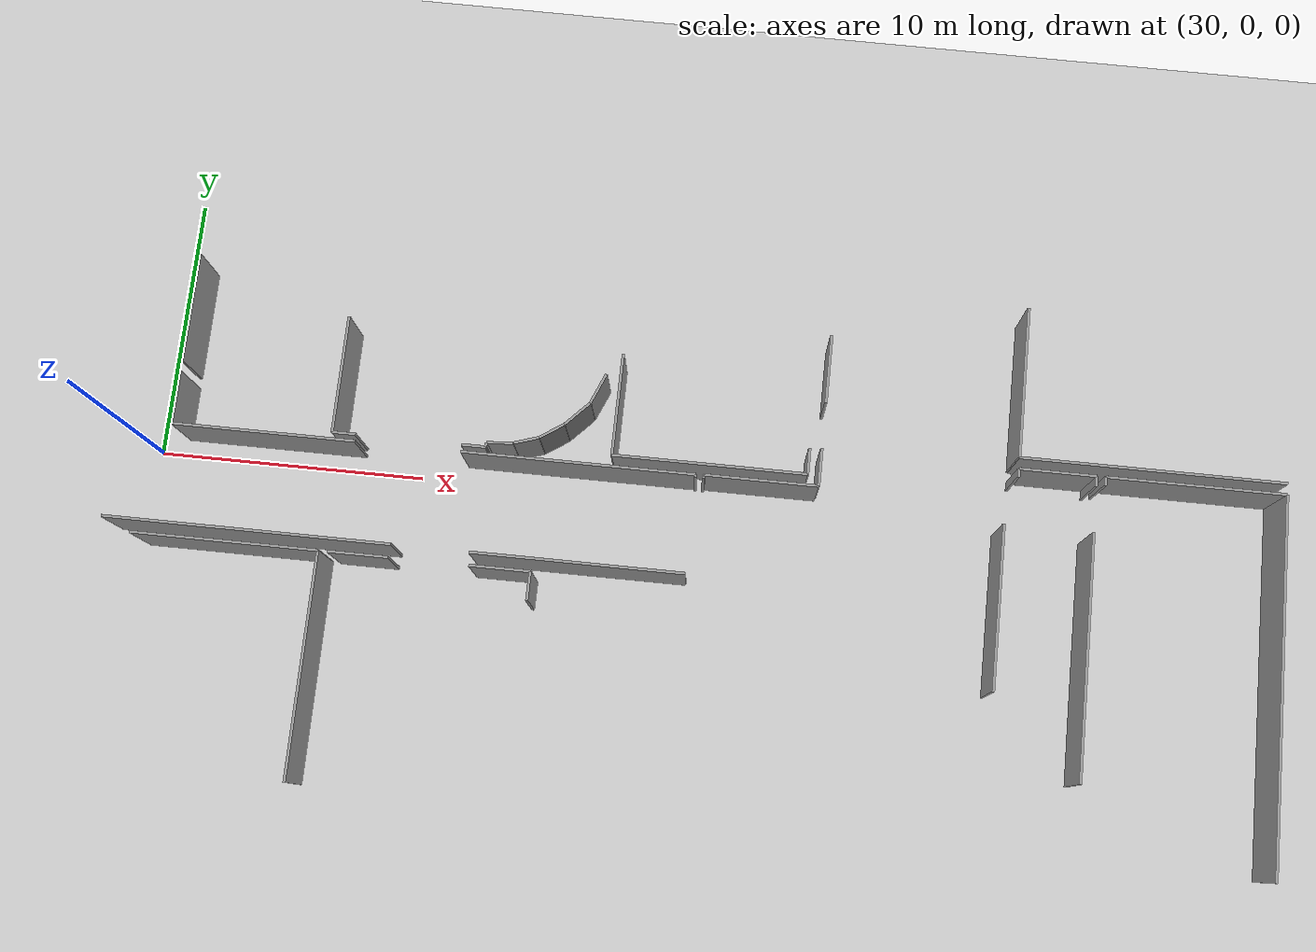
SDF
<sdf version="1.6">
 <world name="default">
  <model name="ground_plane">
   <static>1</static>
   <link name="link">
    <collision name="collision">
     <geometry><plane><normal>0 0 1</normal><size>100 100</size></plane></geometry>
     <surface><friction><ode><mu>100</mu><mu2>50</mu2></ode></friction></surface>
    </collision>
    <visual name="visual">
     <cast_shadows>0</cast_shadows>
     <geometry><plane><normal>0 0 1</normal><size>100 100</size></plane></geometry>
     <material>
      <script><uri>file://media/materials/scripts/gazebo.material</uri><name>Gazebo/Grey</name></script>
     </material>
    </visual>
   </link>
  </model>
  <model name="0510032217_A-40">
   <static>1</static>
   <link name="Wall_166">
    <collision name="Wall_166_Collision">
     <geometry><box><size>0.134250329916 0.1 2.5</size></box></geometry>
     <pose>0.0671251649579 0 1.25 0 0 0</pose>
    </collision>
    <visual name="Wall_166_Visual">
     <pose>0.0671251649579 0 1.25 0 0 0</pose>
     <geometry><box><size>0.134250329916 0.1 2.5</size></box></geometry>
     <material>
      <script><uri>file://media/materials/scripts/gazebo.material</uri><name>Gazebo/Grey</name></script>
      <ambient>1 1 1 1</ambient>
     </material>
    </visual>
    <pose>127.537115521 -52.5775555781 0 0 0 1.57079632679</pose>
   </link>
   <link name="Wall_167">
    <collision name="Wall_167_Collision">
     <geometry><box><size>4.24829966501 0.1 2.5</size></box></geometry>
     <pose>2.1241498325 0 1.25 0 0 0</pose>
    </collision>
    <visual name="Wall_167_Visual">
     <pose>2.1241498325 0 1.25 0 0 0</pose>
     <geometry><box><size>4.24829966501 0.1 2.5</size></box></geometry>
     <material>
      <script><uri>file://media/materials/scripts/gazebo.material</uri><name>Gazebo/Grey</name></script>
      <ambient>1 1 1 1</ambient>
     </material>
    </visual>
    <pose>127.537115521 -52.4433052482 0 0 0 0.0</pose>
   </link>
   <link name="Wall_168">
    <collision name="Wall_168_Collision">
     <geometry><box><size>1.42967719013 0.1 2.5</size></box></geometry>
     <pose>0.714838595066 0 1.25 0 0 0</pose>
    </collision>
    <visual name="Wall_168_Visual">
     <pose>0.714838595066 0 1.25 0 0 0</pose>
     <geometry><box><size>1.42967719013 0.1 2.5</size></box></geometry>
     <material>
      <script><uri>file://media/materials/scripts/gazebo.material</uri><name>Gazebo/Grey</name></script>
      <ambient>1 1 1 1</ambient>
     </material>
    </visual>
    <pose>131.785415186 -52.4433052482 0 0 0 1.57079632679</pose>
   </link>
   <link name="Wall_169">
    <collision name="Wall_169_Collision">
     <geometry><box><size>2.62980915643 0.1 2.5</size></box></geometry>
     <pose>1.31490457822 0 1.25 0 0 0</pose>
    </collision>
    <visual name="Wall_169_Visual">
     <pose>1.31490457822 0 1.25 0 0 0</pose>
     <geometry><box><size>2.62980915643 0.1 2.5</size></box></geometry>
     <material>
      <script><uri>file://media/materials/scripts/gazebo.material</uri><name>Gazebo/Grey</name></script>
      <ambient>1 1 1 1</ambient>
     </material>
    </visual>
    <pose>131.785415186 -49.2665972998 0 0 0 1.57079632679</pose>
   </link>
   <link name="Wall_184">
    <collision name="Wall_184_Collision">
     <geometry><box><size>6.15990762359 0.1 2.5</size></box></geometry>
     <pose>3.0799538118 0 1.25 0 0 0</pose>
    </collision>
    <visual name="Wall_184_Visual">
     <pose>3.0799538118 0 1.25 0 0 0</pose>
     <geometry><box><size>6.15990762359 0.1 2.5</size></box></geometry>
     <material>
      <script><uri>file://media/materials/scripts/gazebo.material</uri><name>Gazebo/Grey</name></script>
      <ambient>1 1 1 1</ambient>
     </material>
    </visual>
    <pose>138.655276114 -53.1820627347 0 0 0 -1.57079632679</pose>
   </link>
   <link name="Wall_198">
    <collision name="Wall_198_Collision">
     <geometry><box><size>7.24418840727 0.1 2.5</size></box></geometry>
     <pose>3.62209420363 0 1.25 0 0 0</pose>
    </collision>
    <visual name="Wall_198_Visual">
     <pose>3.62209420363 0 1.25 0 0 0</pose>
     <geometry><box><size>7.24418840727 0.1 2.5</size></box></geometry>
     <material>
      <script><uri>file://media/materials/scripts/gazebo.material</uri><name>Gazebo/Grey</name></script>
      <ambient>1 1 1 1</ambient>
     </material>
    </visual>
    <pose>131.343835651 -52.0403004771 0 0 0 3.14159265359</pose>
   </link>
   <link name="Wall_199">
    <collision name="Wall_199_Collision">
     <geometry><box><size>3.87422596691 0.1 2.5</size></box></geometry>
     <pose>1.93711298345 0 1.25 0 0 0</pose>
    </collision>
    <visual name="Wall_199_Visual">
     <pose>1.93711298345 0 1.25 0 0 0</pose>
     <geometry><box><size>3.87422596691 0.1 2.5</size></box></geometry>
     <material>
      <script><uri>file://media/materials/scripts/gazebo.material</uri><name>Gazebo/Grey</name></script>
      <ambient>1 1 1 1</ambient>
     </material>
    </visual>
    <pose>124.099647244 -52.0403004771 0 0 0 1.57079632679</pose>
   </link>
   <link name="Wall_202">
    <collision name="Wall_202_Collision">
     <geometry><box><size>0.969067377455 0.1 2.5</size></box></geometry>
     <pose>0.484533688728 0 1.25 0 0 0</pose>
    </collision>
    <visual name="Wall_202_Visual">
     <pose>0.484533688728 0 1.25 0 0 0</pose>
     <geometry><box><size>0.969067377455 0.1 2.5</size></box></geometry>
     <material>
      <script><uri>file://media/materials/scripts/gazebo.material</uri><name>Gazebo/Grey</name></script>
      <ambient>1 1 1 1</ambient>
     </material>
    </visual>
    <pose>131.341297838 -51.0712364227 0 0 0 -1.5681775034</pose>
   </link>
   <link name="Wall_232">
    <collision name="Wall_232_Collision">
     <geometry><box><size>9.87336311034 0.1 2.5</size></box></geometry>
     <pose>4.93668155517 0 1.25 0 0 0</pose>
    </collision>
    <visual name="Wall_232_Visual">
     <pose>4.93668155517 0 1.25 0 0 0</pose>
     <geometry><box><size>9.87336311034 0.1 2.5</size></box></geometry>
     <material>
      <script><uri>file://media/materials/scripts/gazebo.material</uri><name>Gazebo/Grey</name></script>
      <ambient>1 1 1 1</ambient>
     </material>
    </visual>
    <pose>148.939764998 -50.629910669 0 0 0 3.14159265359</pose>
   </link>
   <link name="Wall_233">
    <collision name="Wall_233_Collision">
     <geometry><box><size>5.78570703482 0.1 2.5</size></box></geometry>
     <pose>2.89285351741 0 1.25 0 0 0</pose>
    </collision>
    <visual name="Wall_233_Visual">
     <pose>2.89285351741 0 1.25 0 0 0</pose>
     <geometry><box><size>5.78570703482 0.1 2.5</size></box></geometry>
     <material>
      <script><uri>file://media/materials/scripts/gazebo.material</uri><name>Gazebo/Grey</name></script>
      <ambient>1 1 1 1</ambient>
     </material>
    </visual>
    <pose>139.066401888 -50.629910669 0 0 0 1.57079632679</pose>
   </link>
   <link name="Wall_241">
    <collision name="Wall_241_Collision">
     <geometry><box><size>0.32293675769 0.1 2.5</size></box></geometry>
     <pose>0.161468378845 0 1.25 0 0 0</pose>
    </collision>
    <visual name="Wall_241_Visual">
     <pose>0.161468378845 0 1.25 0 0 0</pose>
     <geometry><box><size>0.32293675769 0.1 2.5</size></box></geometry>
     <material>
      <script><uri>file://media/materials/scripts/gazebo.material</uri><name>Gazebo/Grey</name></script>
      <ambient>1 1 1 1</ambient>
     </material>
    </visual>
    <pose>139.075284235 -51.3753933611 0 0 0 1.57079632679</pose>
   </link>
   <link name="Wall_242">
    <collision name="Wall_242_Collision">
     <geometry><box><size>2.861384631 0.1 2.5</size></box></geometry>
     <pose>1.4306923155 0 1.25 0 0 0</pose>
    </collision>
    <visual name="Wall_242_Visual">
     <pose>1.4306923155 0 1.25 0 0 0</pose>
     <geometry><box><size>2.861384631 0.1 2.5</size></box></geometry>
     <material>
      <script><uri>file://media/materials/scripts/gazebo.material</uri><name>Gazebo/Grey</name></script>
      <ambient>1 1 1 1</ambient>
     </material>
    </visual>
    <pose>139.075284235 -51.0524566034 0 0 0 0.0</pose>
   </link>
   <link name="Wall_243">
    <collision name="Wall_243_Collision">
     <geometry><box><size>0.389046797279 0.1 2.5</size></box></geometry>
     <pose>0.19452339864 0 1.25 0 0 0</pose>
    </collision>
    <visual name="Wall_243_Visual">
     <pose>0.19452339864 0 1.25 0 0 0</pose>
     <geometry><box><size>0.389046797279 0.1 2.5</size></box></geometry>
     <material>
      <script><uri>file://media/materials/scripts/gazebo.material</uri><name>Gazebo/Grey</name></script>
      <ambient>1 1 1 1</ambient>
     </material>
    </visual>
    <pose>141.936668866 -51.0524566034 0 0 0 -1.57079632679</pose>
   </link>
   <link name="Wall_244">
    <collision name="Wall_244_Collision">
     <geometry><box><size>9.13257537306 0.1 2.5</size></box></geometry>
     <pose>4.56628768653 0 1.25 0 0 0</pose>
    </collision>
    <visual name="Wall_244_Visual">
     <pose>4.56628768653 0 1.25 0 0 0</pose>
     <geometry><box><size>9.13257537306 0.1 2.5</size></box></geometry>
     <material>
      <script><uri>file://media/materials/scripts/gazebo.material</uri><name>Gazebo/Grey</name></script>
      <ambient>1 1 1 1</ambient>
     </material>
    </visual>
    <pose>141.936668866 -53.1749568572 0 0 0 -1.57079632679</pose>
   </link>
   <link name="Wall_249">
    <collision name="Wall_249_Collision">
     <geometry><box><size>0.317226677495 0.1 2.5</size></box></geometry>
     <pose>0.158613338747 0 1.25 0 0 0</pose>
    </collision>
    <visual name="Wall_249_Visual">
     <pose>0.158613338747 0 1.25 0 0 0</pose>
     <geometry><box><size>0.317226677495 0.1 2.5</size></box></geometry>
     <material>
      <script><uri>file://media/materials/scripts/gazebo.material</uri><name>Gazebo/Grey</name></script>
      <ambient>1 1 1 1</ambient>
     </material>
    </visual>
    <pose>142.271660238 -51.3665110141 0 0 0 1.57079632679</pose>
   </link>
   <link name="Wall_250">
    <collision name="Wall_250_Collision">
     <geometry><box><size>6.66176022739 0.1 2.5</size></box></geometry>
     <pose>3.33088011369 0 1.25 0 0 0</pose>
    </collision>
    <visual name="Wall_250_Visual">
     <pose>3.33088011369 0 1.25 0 0 0</pose>
     <geometry><box><size>6.66176022739 0.1 2.5</size></box></geometry>
     <material>
      <script><uri>file://media/materials/scripts/gazebo.material</uri><name>Gazebo/Grey</name></script>
      <ambient>1 1 1 1</ambient>
     </material>
    </visual>
    <pose>142.271660238 -51.0492843366 0 0 0 0.0</pose>
   </link>
   <link name="Wall_251">
    <collision name="Wall_251_Collision">
     <geometry><box><size>13.9903517043 0.1 2.5</size></box></geometry>
     <pose>6.99517585215 0 1.25 0 0 0</pose>
    </collision>
    <visual name="Wall_251_Visual">
     <pose>6.99517585215 0 1.25 0 0 0</pose>
     <geometry><box><size>13.9903517043 0.1 2.5</size></box></geometry>
     <material>
      <script><uri>file://media/materials/scripts/gazebo.material</uri><name>Gazebo/Grey</name></script>
      <ambient>1 1 1 1</ambient>
     </material>
    </visual>
    <pose>148.933420465 -51.0492843366 0 0 0 -1.56907305064</pose>
   </link>
   <link name="Wall_326">
    <collision name="Wall_326_Collision">
     <geometry><box><size>0.895848137245 0.1 2.5</size></box></geometry>
     <pose>0.447924068622 0 1.25 0 0 0</pose>
    </collision>
    <visual name="Wall_326_Visual">
     <pose>0.447924068622 0 1.25 0 0 0</pose>
     <geometry><box><size>0.895848137245 0.1 2.5</size></box></geometry>
     <material>
      <script><uri>file://media/materials/scripts/gazebo.material</uri><name>Gazebo/Grey</name></script>
      <ambient>1 1 1 1</ambient>
     </material>
    </visual>
    <pose>119.423726018 -52.2065272561 0 0 0 3.14159265359</pose>
   </link>
   <link name="Wall_327">
    <collision name="Wall_327_Collision">
     <geometry><box><size>0.875545629885 0.1 2.5</size></box></geometry>
     <pose>0.437772814943 0 1.25 0 0 0</pose>
    </collision>
    <visual name="Wall_327_Visual">
     <pose>0.437772814943 0 1.25 0 0 0</pose>
     <geometry><box><size>0.875545629885 0.1 2.5</size></box></geometry>
     <material>
      <script><uri>file://media/materials/scripts/gazebo.material</uri><name>Gazebo/Grey</name></script>
      <ambient>1 1 1 1</ambient>
     </material>
    </visual>
    <pose>114.584115826 -52.2065272561 0 0 0 3.14159265359</pose>
   </link>
   <link name="Wall_328">
    <collision name="Wall_328_Collision">
     <geometry><box><size>4.47924068622 0.1 2.5</size></box></geometry>
     <pose>2.23962034311 0 1.25 0 0 0</pose>
    </collision>
    <visual name="Wall_328_Visual">
     <pose>2.23962034311 0 1.25 0 0 0</pose>
     <geometry><box><size>4.47924068622 0.1 2.5</size></box></geometry>
     <material>
      <script><uri>file://media/materials/scripts/gazebo.material</uri><name>Gazebo/Grey</name></script>
      <ambient>1 1 1 1</ambient>
     </material>
    </visual>
    <pose>113.708570196 -52.2065272561 0 0 0 1.57079632679</pose>
   </link>
   <link name="Wall_339">
    <collision name="Wall_339_Collision">
     <geometry><box><size>1.25550482776 0.1 2.5</size></box></geometry>
     <pose>0.627752413881 0 1.25 0 0 0</pose>
    </collision>
    <visual name="Wall_339_Visual">
     <pose>0.627752413881 0 1.25 0 0 0</pose>
     <geometry><box><size>1.25550482776 0.1 2.5</size></box></geometry>
     <material>
      <script><uri>file://media/materials/scripts/gazebo.material</uri><name>Gazebo/Grey</name></script>
      <ambient>1 1 1 1</ambient>
     </material>
    </visual>
    <pose>123.561630799 -49.0016495787 0 0 0 -1.9617002271</pose>
   </link>
   <link name="Wall_340">
    <collision name="Wall_340_Collision">
     <geometry><box><size>1.24576010829 0.1 2.5</size></box></geometry>
     <pose>0.622880054144 0 1.25 0 0 0</pose>
    </collision>
    <visual name="Wall_340_Visual">
     <pose>0.622880054144 0 1.25 0 0 0</pose>
     <geometry><box><size>1.24576010829 0.1 2.5</size></box></geometry>
     <material>
      <script><uri>file://media/materials/scripts/gazebo.material</uri><name>Gazebo/Grey</name></script>
      <ambient>1 1 1 1</ambient>
     </material>
    </visual>
    <pose>123.083252969 -50.162445437 0 0 0 -2.33170371064</pose>
   </link>
   <link name="Wall_341">
    <collision name="Wall_341_Collision">
     <geometry><box><size>1.05849204928 0.1 2.5</size></box></geometry>
     <pose>0.529246024639 0 1.25 0 0 0</pose>
    </collision>
    <visual name="Wall_341_Visual">
     <pose>0.529246024639 0 1.25 0 0 0</pose>
     <geometry><box><size>1.05849204928 0.1 2.5</size></box></geometry>
     <material>
      <script><uri>file://media/materials/scripts/gazebo.material</uri><name>Gazebo/Grey</name></script>
      <ambient>1 1 1 1</ambient>
     </material>
    </visual>
    <pose>122.224203127 -51.0646381078 0 0 0 -2.54697357524</pose>
   </link>
   <link name="Wall_342">
    <collision name="Wall_342_Collision">
     <geometry><box><size>0.967778843268 0.1 2.5</size></box></geometry>
     <pose>0.483889421634 0 1.25 0 0 0</pose>
    </collision>
    <visual name="Wall_342_Visual">
     <pose>0.483889421634 0 1.25 0 0 0</pose>
     <geometry><box><size>0.967778843268 0.1 2.5</size></box></geometry>
     <material>
      <script><uri>file://media/materials/scripts/gazebo.material</uri><name>Gazebo/Grey</name></script>
      <ambient>1 1 1 1</ambient>
     </material>
    </visual>
    <pose>121.34738859 -51.6575982134 0 0 0 -2.8301663996</pose>
   </link>
   <link name="Wall_343">
    <collision name="Wall_343_Collision">
     <geometry><box><size>0.994559179558 0.1 2.5</size></box></geometry>
     <pose>0.497279589779 0 1.25 0 0 0</pose>
    </collision>
    <visual name="Wall_343_Visual">
     <pose>0.497279589779 0 1.25 0 0 0</pose>
     <geometry><box><size>0.994559179558 0.1 2.5</size></box></geometry>
     <material>
      <script><uri>file://media/materials/scripts/gazebo.material</uri><name>Gazebo/Grey</name></script>
      <ambient>1 1 1 1</ambient>
     </material>
    </visual>
    <pose>120.426162319 -51.9541417115 0 0 0 -3.05715878937</pose>
   </link>
   <link name="Wall_344">
    <collision name="Wall_344_Collision">
     <geometry><box><size>0.168897346089 0.1 2.5</size></box></geometry>
     <pose>0.0844486730445 0 1.25 0 0 0</pose>
    </collision>
    <visual name="Wall_344_Visual">
     <pose>0.0844486730445 0 1.25 0 0 0</pose>
     <geometry><box><size>0.168897346089 0.1 2.5</size></box></geometry>
     <material>
      <script><uri>file://media/materials/scripts/gazebo.material</uri><name>Gazebo/Grey</name></script>
      <ambient>1 1 1 1</ambient>
     </material>
    </visual>
    <pose>119.435146178 -52.038016445 0 0 0 -1.6384639404</pose>
   </link>
   <link name="Wall_354">
    <collision name="Wall_354_Collision">
     <geometry><box><size>4.22660136027 0.1 2.5</size></box></geometry>
     <pose>2.11330068013 0 1.25 0 0 0</pose>
    </collision>
    <visual name="Wall_354_Visual">
     <pose>2.11330068013 0 1.25 0 0 0</pose>
     <geometry><box><size>4.22660136027 0.1 2.5</size></box></geometry>
     <material>
      <script><uri>file://media/materials/scripts/gazebo.material</uri><name>Gazebo/Grey</name></script>
      <ambient>1 1 1 1</ambient>
     </material>
    </visual>
    <pose>107.745216222 -50.0595371028 0 0 0 1.57079632679</pose>
   </link>
   <link name="Wall_489">
    <collision name="Wall_489_Collision">
     <geometry><box><size>2.01921124759 0.1 2.5</size></box></geometry>
     <pose>1.00960562379 0 1.25 0 0 0</pose>
    </collision>
    <visual name="Wall_489_Visual">
     <pose>1.00960562379 0 1.25 0 0 0</pose>
     <geometry><box><size>2.01921124759 0.1 2.5</size></box></geometry>
     <material>
      <script><uri>file://media/materials/scripts/gazebo.material</uri><name>Gazebo/Grey</name></script>
      <ambient>1 1 1 1</ambient>
     </material>
    </visual>
    <pose>107.745216222 -50.445157852 0 0 0 -1.57079632679</pose>
   </link>
   <link name="Wall_490">
    <collision name="Wall_490_Collision">
     <geometry><box><size>6.85006598315 0.1 2.5</size></box></geometry>
     <pose>3.42503299157 0 1.25 0 0 0</pose>
    </collision>
    <visual name="Wall_490_Visual">
     <pose>3.42503299157 0 1.25 0 0 0</pose>
     <geometry><box><size>6.85006598315 0.1 2.5</size></box></geometry>
     <material>
      <script><uri>file://media/materials/scripts/gazebo.material</uri><name>Gazebo/Grey</name></script>
      <ambient>1 1 1 1</ambient>
     </material>
    </visual>
    <pose>107.745216222 -52.4643690996 0 0 0 0.0</pose>
   </link>
   <link name="Wall_491">
    <collision name="Wall_491_Collision">
     <geometry><box><size>8.71358237742 0.1 2.5</size></box></geometry>
     <pose>4.35679118871 0 1.25 0 0 0</pose>
    </collision>
    <visual name="Wall_491_Visual">
     <pose>4.35679118871 0 1.25 0 0 0</pose>
     <geometry><box><size>8.71358237742 0.1 2.5</size></box></geometry>
     <material>
      <script><uri>file://media/materials/scripts/gazebo.material</uri><name>Gazebo/Grey</name></script>
      <ambient>1 1 1 1</ambient>
     </material>
    </visual>
    <pose>118.536760227 -52.4643690996 0 0 0 0.0</pose>
   </link>
   <link name="Wall_492">
    <collision name="Wall_492_Collision">
     <geometry><box><size>0.0909806111055 0.1 2.5</size></box></geometry>
     <pose>0.0454903055527 0 1.25 0 0 0</pose>
    </collision>
    <visual name="Wall_492_Visual">
     <pose>0.0454903055527 0 1.25 0 0 0</pose>
     <geometry><box><size>0.0909806111055 0.1 2.5</size></box></geometry>
     <material>
      <script><uri>file://media/materials/scripts/gazebo.material</uri><name>Gazebo/Grey</name></script>
      <ambient>1 1 1 1</ambient>
     </material>
    </visual>
    <pose>127.250342605 -52.4643690996 0 0 0 -1.57079632679</pose>
   </link>
   <link name="Wall_493">
    <collision name="Wall_493_Collision">
     <geometry><box><size>7.93828037763 0.1 2.5</size></box></geometry>
     <pose>3.96914018881 0 1.25 0 0 0</pose>
    </collision>
    <visual name="Wall_493_Visual">
     <pose>3.96914018881 0 1.25 0 0 0</pose>
     <geometry><box><size>7.93828037763 0.1 2.5</size></box></geometry>
     <material>
      <script><uri>file://media/materials/scripts/gazebo.material</uri><name>Gazebo/Grey</name></script>
      <ambient>1 1 1 1</ambient>
     </material>
    </visual>
    <pose>127.250342605 -56.1718607248 0 0 0 3.14159265359</pose>
   </link>
   <link name="Wall_494">
    <collision name="Wall_494_Collision">
     <geometry><box><size>10.6962491118 0.1 2.5</size></box></geometry>
     <pose>5.34812455588 0 1.25 0 0 0</pose>
    </collision>
    <visual name="Wall_494_Visual">
     <pose>5.34812455588 0 1.25 0 0 0</pose>
     <geometry><box><size>10.6962491118 0.1 2.5</size></box></geometry>
     <material>
      <script><uri>file://media/materials/scripts/gazebo.material</uri><name>Gazebo/Grey</name></script>
      <ambient>1 1 1 1</ambient>
     </material>
    </visual>
    <pose>116.452580956 -56.1718607248 0 0 0 3.14159265359</pose>
   </link>
   <link name="Wall_586">
    <collision name="Wall_586_Collision">
     <geometry><box><size>6.93977768754 0.1 2.5</size></box></geometry>
     <pose>3.46988884377 0 1.25 0 0 0</pose>
    </collision>
    <visual name="Wall_586_Visual">
     <pose>3.46988884377 0 1.25 0 0 0</pose>
     <geometry><box><size>6.93977768754 0.1 2.5</size></box></geometry>
     <material>
      <script><uri>file://media/materials/scripts/gazebo.material</uri><name>Gazebo/Grey</name></script>
      <ambient>1 1 1 1</ambient>
     </material>
    </visual>
    <pose>106.886166379 -56.6591209014 0 0 0 0.0</pose>
   </link>
   <link name="Wall_587">
    <collision name="Wall_587_Collision">
     <geometry><box><size>8.38410876804 0.1 2.5</size></box></geometry>
     <pose>4.19205438402 0 1.25 0 0 0</pose>
    </collision>
    <visual name="Wall_587_Visual">
     <pose>4.19205438402 0 1.25 0 0 0</pose>
     <geometry><box><size>8.38410876804 0.1 2.5</size></box></geometry>
     <material>
      <script><uri>file://media/materials/scripts/gazebo.material</uri><name>Gazebo/Grey</name></script>
      <ambient>1 1 1 1</ambient>
     </material>
    </visual>
    <pose>113.825944067 -56.6591209014 0 0 0 -1.56696724739</pose>
   </link>
   <link name="Wall_595">
    <collision name="Wall_595_Collision">
     <geometry><box><size>2.23936656177 0.1 2.5</size></box></geometry>
     <pose>1.11968328089 0 1.25 0 0 0</pose>
    </collision>
    <visual name="Wall_595_Visual">
     <pose>1.11968328089 0 1.25 0 0 0</pose>
     <geometry><box><size>2.23936656177 0.1 2.5</size></box></geometry>
     <material>
      <script><uri>file://media/materials/scripts/gazebo.material</uri><name>Gazebo/Grey</name></script>
      <ambient>1 1 1 1</ambient>
     </material>
    </visual>
    <pose>114.178573241 -56.657344432 0 0 0 0.0</pose>
   </link>
   <link name="Wall_596">
    <collision name="Wall_596_Collision">
     <geometry><box><size>2.25865394376 0.1 2.5</size></box></geometry>
     <pose>1.12932697188 0 1.25 0 0 0</pose>
    </collision>
    <visual name="Wall_596_Visual">
     <pose>1.12932697188 0 1.25 0 0 0</pose>
     <geometry><box><size>2.25865394376 0.1 2.5</size></box></geometry>
     <material>
      <script><uri>file://media/materials/scripts/gazebo.material</uri><name>Gazebo/Grey</name></script>
      <ambient>1 1 1 1</ambient>
     </material>
    </visual>
    <pose>119.367894122 -56.657344432 0 0 0 0.0</pose>
   </link>
   <link name="Wall_597">
    <collision name="Wall_597_Collision">
     <geometry><box><size>1.07907826617 0.1 2.5</size></box></geometry>
     <pose>0.539539133083 0 1.25 0 0 0</pose>
    </collision>
    <visual name="Wall_597_Visual">
     <pose>0.539539133083 0 1.25 0 0 0</pose>
     <geometry><box><size>1.07907826617 0.1 2.5</size></box></geometry>
     <material>
      <script><uri>file://media/materials/scripts/gazebo.material</uri><name>Gazebo/Grey</name></script>
      <ambient>1 1 1 1</ambient>
     </material>
    </visual>
    <pose>121.626548066 -56.657344432 0 0 0 -1.57079632679</pose>
   </link>
   <pose>-76.8 53.1213480865 0 0 0 0</pose>
  </model>
 </world>
</sdf>
